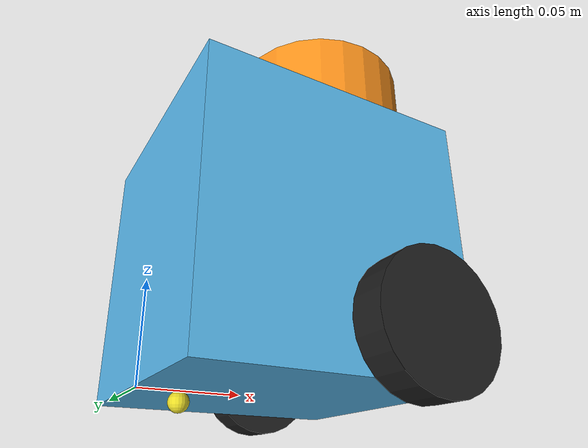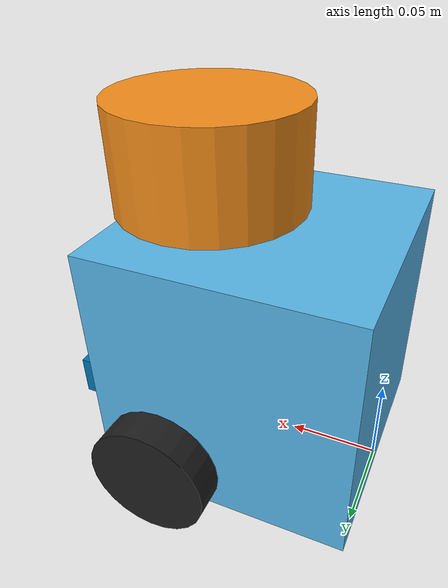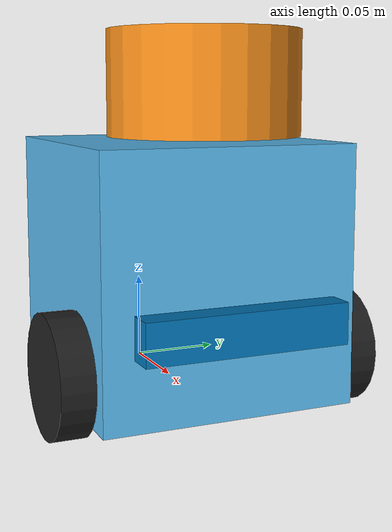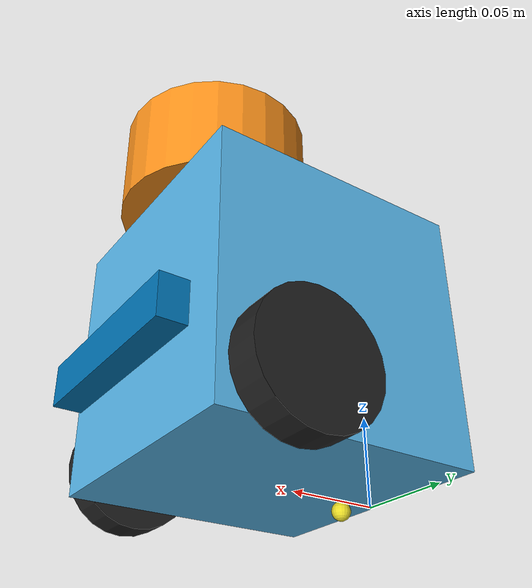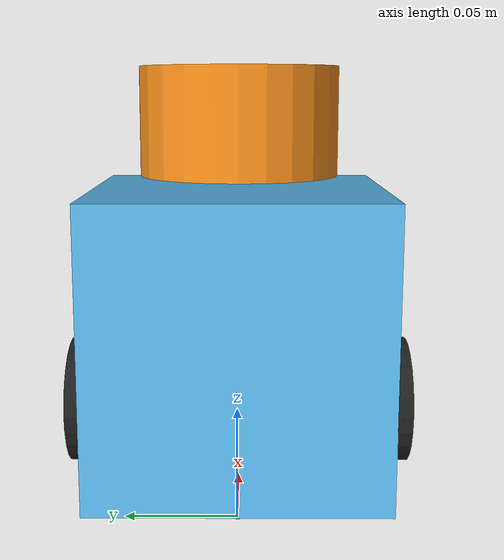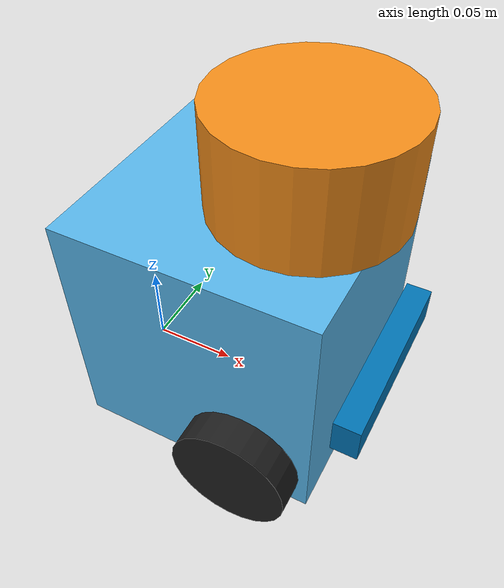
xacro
<?xml version="1.0"?>

<robot xmlns:xacro="http://www.ros.org/wiki/xacro" name="turtlebot3_burger">

  <link name="base_link">

  </link>
  <!-- body link (chassis)-->
  <link name="body_link">
    <inertial>
      <origin xyz="-0.032 0 0.070" rpy="0 0 0"/>
      <mass value="1.0"/>
      <inertia ixx="0.001" ixy="0.000" ixz="0.000"
               iyy="0.001" iyz="0.000" izz="0.001"/>
    </inertial>
    <collision name="body_collision">
      <origin xyz="-0.032 0 0.070" rpy="0 0 0"/>
      <geometry>
        <box size="0.140 0.140 0.140"/>
      </geometry>
    </collision>
    <visual name="body_visual">
      <origin xyz="-0.032 0 0.070" rpy="0 0 0"/>
      <geometry>
        <box size="0.140 0.140 0.140"/>
      </geometry>
    </visual>
  </link>
  <!-- BASE_FOOTPRINT LINK -->

  <joint name="base_footprint_joint" type="fixed">
      <parent link="base_link"/>
      <child link="base_footprint"/>
      <origin xyz="0 0 0" rpy="0 0 0"/>
  </joint>

  <link name="base_footprint">
  </link>
  <!-- Lidar link -->
  <link name="lidar">
    <inertial>
      <origin xyz="0 0 0" rpy="0 0 0"/>
      <mass value="0.125"/>
      <inertia ixx="0.001" ixy="0.000" ixz="0.000"
               iyy="0.001" iyz="0.000" izz="0.001"/>
    </inertial>
    <collision name="lidar_sensor_collision">
      <origin xyz="0 0 0" rpy="0 0 0"/>
      <geometry>
        <cylinder radius="0.0508" length="0.055"/>
      </geometry>
    </collision>
    <visual name="lidar_sensor_visual">
      <origin xyz="0 0 0" rpy="0 0 0"/>
      <geometry>
        <cylinder radius="0.0508" length="0.055"/>
      </geometry>
    </visual>
  </link>

  <!--lidar-->
<gazebo reference="lidar">
  <sensor name="laser" type="ray">
    <visualize>false</visualize>
    <pose> 0 0 0 0 0 0 </pose>
    <visualize>false</visualize>
    <update_rate>10</update_rate>
    <ray>
        <scan>
            <horizontal>
                <samples>360</samples>
                <min_angle>-3.14</min_angle>
                <max_angle>3.14</max_angle>
            </horizontal>
        </scan>
        <range>
            <min>0.15</min>
            <max>12</max>
        </range>
    </ray>
    <plugin name="laser_controller" filename="libgazebo_ros_ray_sensor.so">
        <ros>
            <argument>~/out:=scan</argument>
        </ros>
        <output_type>sensor_msgs/LaserScan</output_type>
        <frame_name>lidar</frame_name>
    </plugin>
</sensor>
</gazebo>

  <!-- cammera -->
<link name="camera_link">
  <visual>
    <origin xyz="0 0 0" rpy="0 0 0"/>
    <geometry>
      <box size="0.015 0.110 0.022"/>
    </geometry>
  </visual>

  <collision>
    <origin xyz="0 0 0" rpy="0 0 0"/>
    <geometry>
      <box size="0.015 0.110 0.022"/>
    </geometry>
  </collision>

  <inertial>
    <origin xyz="0 0 0" rpy="0 0 0"/>
    <mass value="0.035"/>
    <inertia ixx="0.001"  ixy="0"  ixz="0" iyy="0.001" iyz="0" izz="0.001" />
  </inertial>
</link>

<joint name="camera_joint" type="fixed">
  <parent link="body_link"/>
  <child link="camera_link"/>
  <origin xyz="0.05 0 0.05" rpy="0 0 0"/>
</joint>

<link name="camera_depth_frame"/>

<joint name="camera_depth_joint" type="fixed">
  <origin xyz="0 0 0" rpy="${-pi/2} 0 ${-pi/2}"/>
  <parent link="camera_link"/>
  <child link="camera_depth_frame"/>
</joint>

<gazebo reference="camera_link">
  <sensor name="depth_camera" type="depth">
    <visualize>true</visualize>
    <update_rate>30.0</update_rate>
    <camera name="camera">
      <horizontal_fov>1.047198</horizontal_fov>
      <image>
        <width>640</width>
        <height>480</height>
        <format>R8G8B8</format>
      </image>
      <clip>
        <near>0.05</near>
        <far>3</far>
      </clip>
    </camera>
    <plugin name="depth_camera_controller" filename="libgazebo_ros_camera.so">
      <baseline>0.2</baseline>
      <alwaysOn>true</alwaysOn>
      <updateRate>0.0</updateRate>
      <frame_name>camera_depth_frame</frame_name>
      <pointCloudCutoff>0.5</pointCloudCutoff>
      <pointCloudCutoffMax>3.0</pointCloudCutoffMax>
      <distortionK1>0</distortionK1>
      <distortionK2>0</distortionK2>
      <distortionK3>0</distortionK3>
      <distortionT1>0</distortionT1>
      <distortionT2>0</distortionT2>
      <CxPrime>0</CxPrime>
      <Cx>0</Cx>
      <Cy>0</Cy>
      <focalLength>0</focalLength>
      <hackBaseline>0</hackBaseline>
    </plugin>
  </sensor>
</gazebo>

  <!-- caster link -->
  <link name="caster_wheel">
    <visual>
      <origin xyz="0.0 0.0 0.0" rpy="0 0 0"/>
      <geometry>
        <sphere radius="0.005"/>
      </geometry>
    </visual>
    <collision>
      <origin xyz="0.0 0.0 0.0" rpy="0 0 0"/>
      <geometry>
        <sphere radius="0.005"/>
      </geometry>
    </collision>
    <inertial>
      <origin xyz="0.0 0.0 0.0" rpy="0 0 0"/>
      <mass value="0.01"/>
      <inertia ixx="1e-5" ixy="0.0" ixz="0.0"
               iyy="1e-5" iyz="0.0" izz="1e-5"/>
    </inertial>
  </link>

  <!-- Left wheel link -->
  <link name="left_wheel">
    <inertial>

      <mass value="0.1"/>
      <inertia ixx="0.001" ixy="0.000" ixz="0.000"
               iyy="0.001" iyz="0.000" izz="0.001"/>
    </inertial>
    <collision name="left_wheel_collision">

      <geometry>
        <cylinder radius="0.033" length="0.018"/>
      </geometry>
    </collision>
    <visual name="left_wheel_visual">

      <geometry>
        <cylinder radius="0.033" length="0.018"/>
      </geometry>
    </visual>
  </link>

  <!-- Right wheel link -->
  <link name="right_wheel">
    <inertial>

      <mass value="0.1"/>
      <inertia ixx="0.001" ixy="0.000" ixz="0.000"
               iyy="0.001" iyz="0.000" izz="0.001"/>
    </inertial>
    <collision name="right_wheel_collision">

      <geometry>
        <cylinder radius="0.033" length="0.018"/>
      </geometry>
    </collision>
    <visual name="right_wheel_visual">

      <geometry>
        <cylinder radius="0.033" length="0.018"/>
      </geometry>
    </visual>
  </link>

  <!--caster wheel joint-->
  <joint name="caster_wheel_joint" type="fixed">
    <parent link="body_link"/>
    <child link="caster_wheel"/>
    <origin xyz="-0.08 0.0 -0.005" rpy="0 0 0"/>
  </joint>

  <!-- Left wheel joint -->
  <joint name="left_wheel_joint" type="continuous">
    <parent link="body_link"/>
    <child link="left_wheel"/>
    <origin xyz="0 0.08 0.023" rpy="-1.57 0 0"/>
    <axis xyz="0 0 1"/>
  </joint>

  <!-- Right wheel joint -->
  <joint name="right_wheel_joint" type="continuous">
    <parent link="body_link"/>
    <child link="right_wheel"/>
    <origin xyz="0.0 -0.08 0.023" rpy="1.57 0 0"/>
    <axis xyz="0 0 -1"/>
  </joint>

  <!-- Lidar joint -->
  <joint name="lidar_joint" type="fixed">
    <parent link="body_link"/>
    <child link="lidar"/>
    <origin xyz="0.0 0 0.171" rpy="0 0 0"/>
  </joint>
  <!-- base joint -->
  <joint name="base_joint" type="fixed">
    <parent link="base_link"/>
    <child link="body_link"/>
    <origin xyz="0.1 0.0 0.0" rpy="0 0 0"/>
  </joint>
     <!-- Adding transmission to wheels -->
  <transmission name="right_wheel_joint">
    <type>transmission_interface/SimpleTransmission</type>
    <actuator name="right_wheel_motor">
      <mechanicalReduction>1</mechanicalReduction>
    </actuator>
    <joint name="right_wheel_joint">
      <hardwareInterface>hardware_interface/VelocityJointInterface</hardwareInterface>
    </joint>
  </transmission>

  <transmission name="left_wheel_joint">
    <type>transmission_interface/SimpleTransmission</type>
    <actuator name="left_wheel_motor">
      <mechanicalReduction>1</mechanicalReduction>
    </actuator>
    <joint name="left_wheel_joint">
      <hardwareInterface>hardware_interface/VelocityJointInterface</hardwareInterface>
    </joint>
  </transmission>
<!-- Plugin controller -->
<gazebo>
  <plugin name='diff_drive' filename='libgazebo_ros_diff_drive.so'>

    <!-- wheels -->
    <left_joint>left_wheel_joint</left_joint>
    <right_joint>right_wheel_joint</right_joint>

    <!-- kinematics -->
    <wheel_separation>0.142</wheel_separation>
    <wheel_diameter>0.066</wheel_diameter>

    <!-- limits -->
    <max_wheel_torque>80</max_wheel_torque>
    <max_wheel_acceleration>1.0</max_wheel_acceleration>

    <!-- output -->
    <publish_odom>true</publish_odom>
    <publish_odom_tf>true</publish_odom_tf>
    <publish_wheel_tf>true</publish_wheel_tf>

    <odometry_frame>odom</odometry_frame>
    <robot_base_frame>base_link</robot_base_frame>
  </plugin>
</gazebo>

<!-- Ppub for state_robot_publisher and to rviz -->

<gazebo reference="base">
  <material>Gazebo/Orange</material>
</gazebo>

<gazebo reference="left_wheel">
  <material>Gazebo/Black</material>
</gazebo>

<gazebo reference="right_wheel">
  <material>Gazebo/Black</material>
</gazebo>

<gazebo reference="lidar">
  <material>Gazebo/Orange</material>
</gazebo>

<gazebo reference="caster_wheel">
  <material>Gazebo/Yellow</material>
</gazebo>

</robot>
